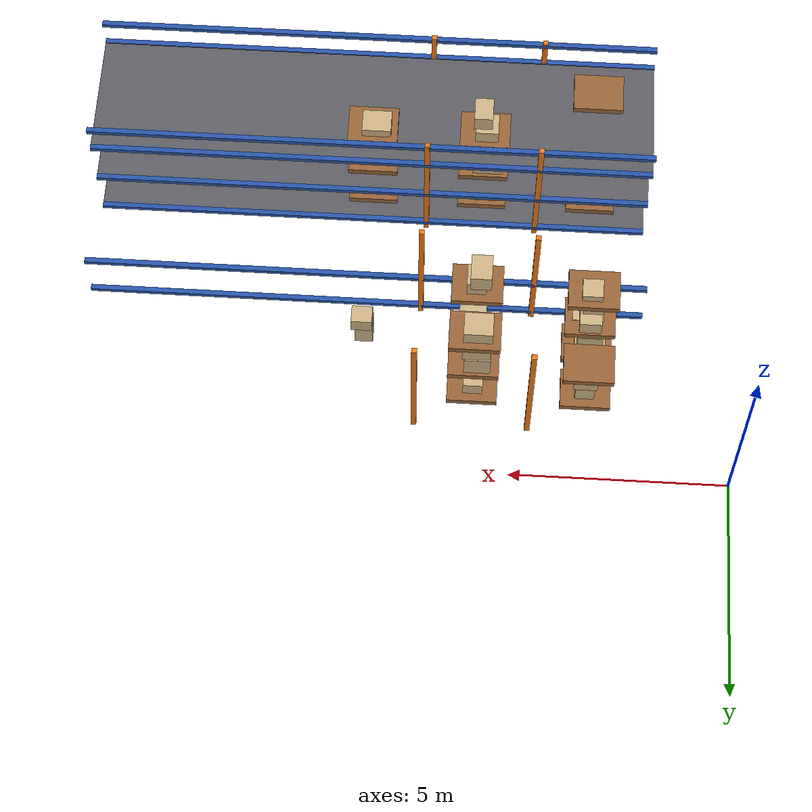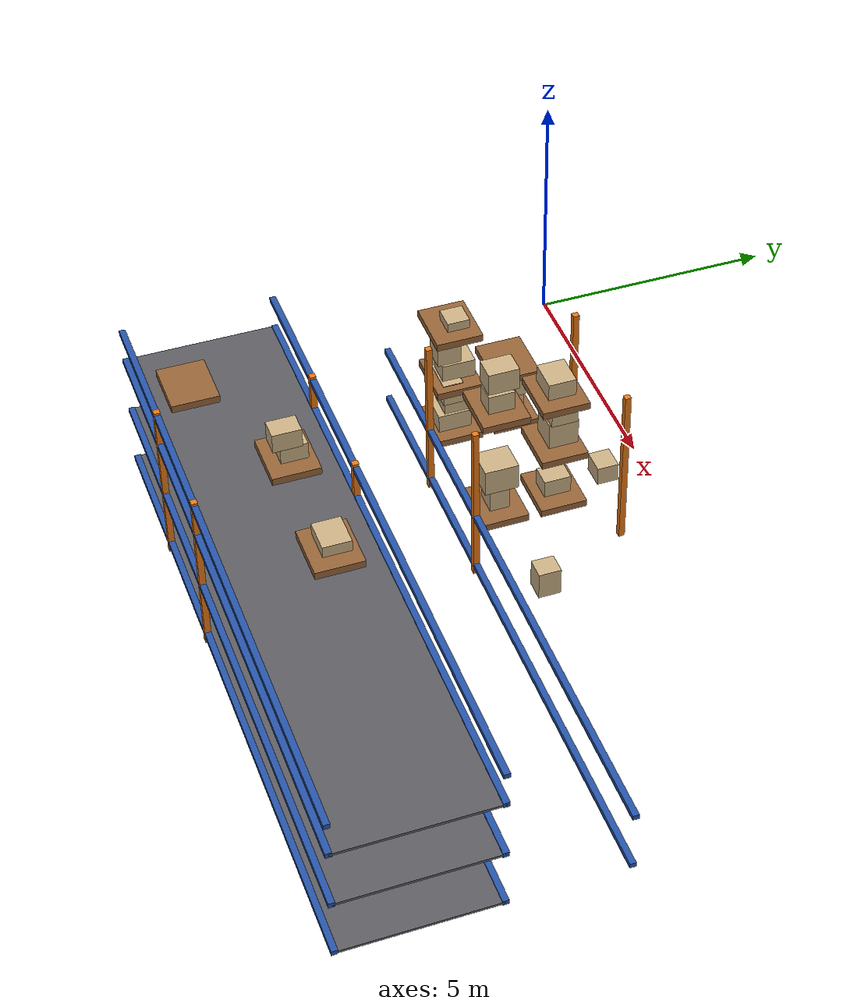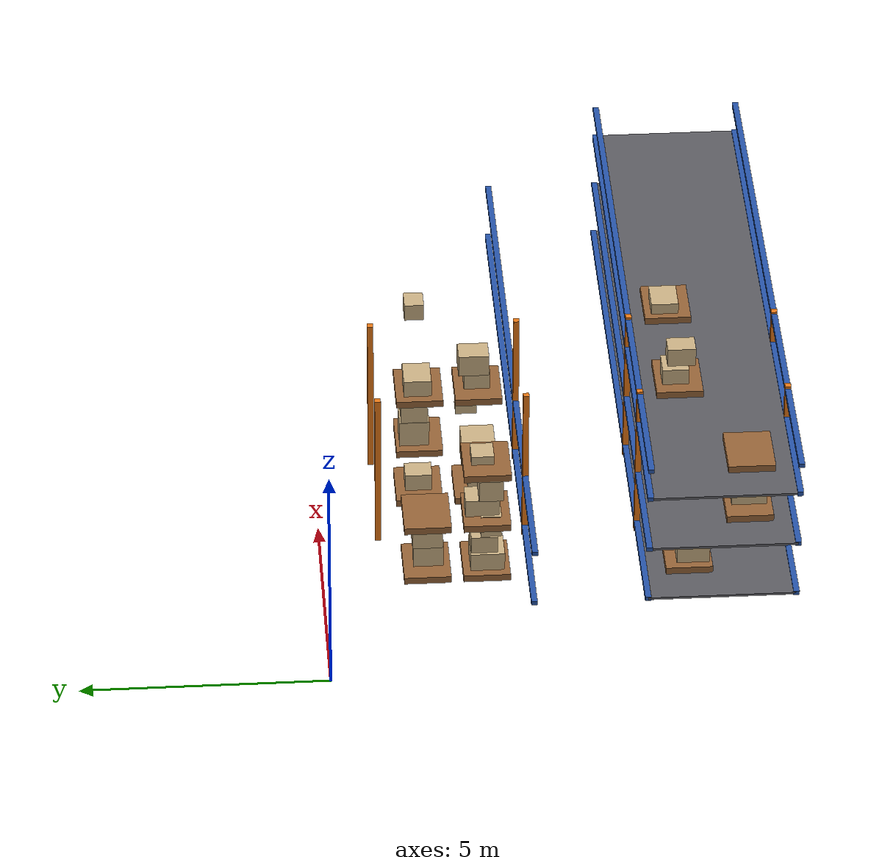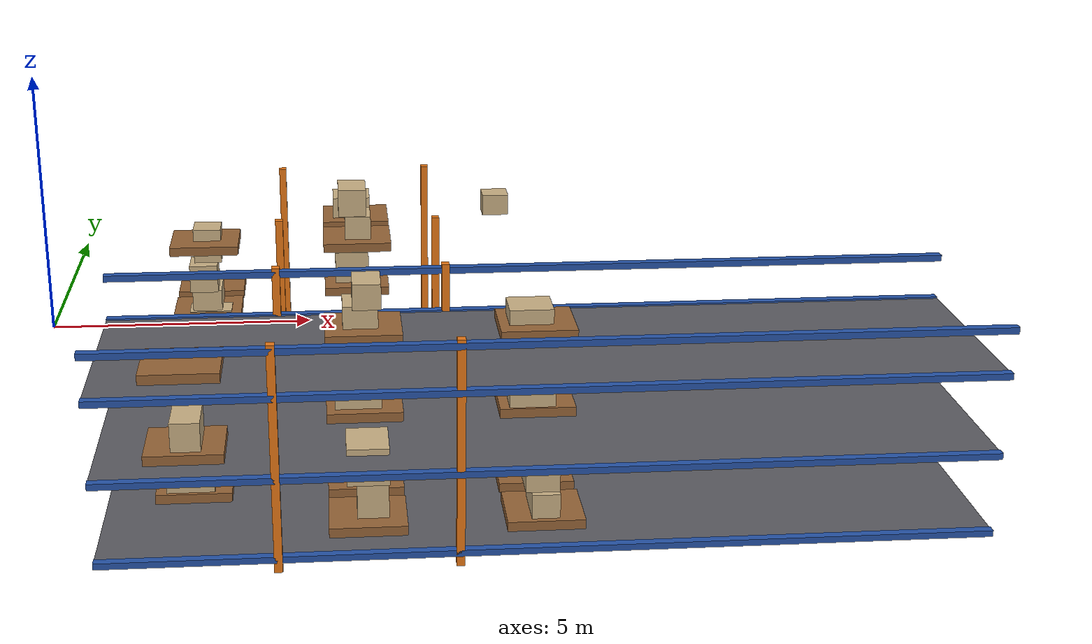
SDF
<sdf version="1.7">
 <world name="default">
  <model name="warehouse_racks">
   <static>1</static>
   <link name="r01_u1_0">
    <pose>4.6 -9.5 1.75 0 0 0</pose>
    <collision name="c"><geometry><box><size>0.12 0.12 3.5</size></box></geometry></collision>
    <visual name="v">
     <geometry><box><size>0.12 0.12 3.5</size></box></geometry>
     <material>
      <ambient>0.910 0.471 0.086 1</ambient>
      <diffuse>0.910 0.471 0.086 1</diffuse>
      <specular>0.1 0.1 0.1 1</specular>
     </material>
    </visual>
   </link>
   <link name="r01_u1_1">
    <pose>4.6 -6.5 1.75 0 0 0</pose>
    <collision name="c"><geometry><box><size>0.12 0.12 3.5</size></box></geometry></collision>
    <visual name="v">
     <geometry><box><size>0.12 0.12 3.5</size></box></geometry>
     <material>
      <ambient>0.910 0.471 0.086 1</ambient>
      <diffuse>0.910 0.471 0.086 1</diffuse>
      <specular>0.1 0.1 0.1 1</specular>
     </material>
    </visual>
   </link>
   <link name="r01_u2_0">
    <pose>7.2 -9.5 1.75 0 0 0</pose>
    <collision name="c"><geometry><box><size>0.12 0.12 3.5</size></box></geometry></collision>
    <visual name="v">
     <geometry><box><size>0.12 0.12 3.5</size></box></geometry>
     <material>
      <ambient>0.910 0.471 0.086 1</ambient>
      <diffuse>0.910 0.471 0.086 1</diffuse>
      <specular>0.1 0.1 0.1 1</specular>
     </material>
    </visual>
   </link>
   <link name="r01_u2_1">
    <pose>7.2 -6.5 1.75 0 0 0</pose>
    <collision name="c"><geometry><box><size>0.12 0.12 3.5</size></box></geometry></collision>
    <visual name="v">
     <geometry><box><size>0.12 0.12 3.5</size></box></geometry>
     <material>
      <ambient>0.910 0.471 0.086 1</ambient>
      <diffuse>0.910 0.471 0.086 1</diffuse>
      <specular>0.1 0.1 0.1 1</specular>
     </material>
    </visual>
   </link>
   <link name="r01_b0_0">
    <pose>8.5 -9.5 0.2 0 0 0</pose>
    <collision name="c"><geometry><box><size>13 0.12 0.1</size></box></geometry></collision>
    <visual name="v">
     <geometry><box><size>13 0.12 0.1</size></box></geometry>
     <material>
      <ambient>0.149 0.329 0.659 1</ambient>
      <diffuse>0.149 0.329 0.659 1</diffuse>
      <specular>0.1 0.1 0.1 1</specular>
     </material>
    </visual>
   </link>
   <link name="r01_b0_1">
    <pose>8.5 -6.5 0.2 0 0 0</pose>
    <collision name="c"><geometry><box><size>13 0.12 0.1</size></box></geometry></collision>
    <visual name="v">
     <geometry><box><size>13 0.12 0.1</size></box></geometry>
     <material>
      <ambient>0.149 0.329 0.659 1</ambient>
      <diffuse>0.149 0.329 0.659 1</diffuse>
      <specular>0.1 0.1 0.1 1</specular>
     </material>
    </visual>
   </link>
   <link name="r01_b1_0">
    <pose>8.5 -9.5 1.45 0 0 0</pose>
    <collision name="c"><geometry><box><size>13 0.12 0.1</size></box></geometry></collision>
    <visual name="v">
     <geometry><box><size>13 0.12 0.1</size></box></geometry>
     <material>
      <ambient>0.149 0.329 0.659 1</ambient>
      <diffuse>0.149 0.329 0.659 1</diffuse>
      <specular>0.1 0.1 0.1 1</specular>
     </material>
    </visual>
   </link>
   <link name="r01_b1_1">
    <pose>8.5 -6.5 1.45 0 0 0</pose>
    <collision name="c"><geometry><box><size>13 0.12 0.1</size></box></geometry></collision>
    <visual name="v">
     <geometry><box><size>13 0.12 0.1</size></box></geometry>
     <material>
      <ambient>0.149 0.329 0.659 1</ambient>
      <diffuse>0.149 0.329 0.659 1</diffuse>
      <specular>0.1 0.1 0.1 1</specular>
     </material>
    </visual>
   </link>
   <link name="r01_b2_0">
    <pose>8.5 -9.5 2.7 0 0 0</pose>
    <collision name="c"><geometry><box><size>13 0.12 0.1</size></box></geometry></collision>
    <visual name="v">
     <geometry><box><size>13 0.12 0.1</size></box></geometry>
     <material>
      <ambient>0.149 0.329 0.659 1</ambient>
      <diffuse>0.149 0.329 0.659 1</diffuse>
      <specular>0.1 0.1 0.1 1</specular>
     </material>
    </visual>
   </link>
   <link name="r01_b2_1">
    <pose>8.5 -6.5 2.7 0 0 0</pose>
    <collision name="c"><geometry><box><size>13 0.12 0.1</size></box></geometry></collision>
    <visual name="v">
     <geometry><box><size>13 0.12 0.1</size></box></geometry>
     <material>
      <ambient>0.149 0.329 0.659 1</ambient>
      <diffuse>0.149 0.329 0.659 1</diffuse>
      <specular>0.1 0.1 0.1 1</specular>
     </material>
    </visual>
   </link>
   <link name="r01_b3_0">
    <pose>8.5 -9.5 3.4 0 0 0</pose>
    <collision name="c"><geometry><box><size>13 0.12 0.1</size></box></geometry></collision>
    <visual name="v">
     <geometry><box><size>13 0.12 0.1</size></box></geometry>
     <material>
      <ambient>0.149 0.329 0.659 1</ambient>
      <diffuse>0.149 0.329 0.659 1</diffuse>
      <specular>0.1 0.1 0.1 1</specular>
     </material>
    </visual>
   </link>
   <link name="r01_b3_1">
    <pose>8.5 -6.5 3.4 0 0 0</pose>
    <collision name="c"><geometry><box><size>13 0.12 0.1</size></box></geometry></collision>
    <visual name="v">
     <geometry><box><size>13 0.12 0.1</size></box></geometry>
     <material>
      <ambient>0.149 0.329 0.659 1</ambient>
      <diffuse>0.149 0.329 0.659 1</diffuse>
      <specular>0.1 0.1 0.1 1</specular>
     </material>
    </visual>
   </link>
   <link name="r01_d0">
    <pose>8.5 -8 0.2 0 0 0</pose>
    <collision name="c"><geometry><box><size>13 3 0.05</size></box></geometry></collision>
    <visual name="v">
     <geometry><box><size>13 3 0.05</size></box></geometry>
     <material>
      <ambient>0.361 0.361 0.384 1</ambient>
      <diffuse>0.361 0.361 0.384 1</diffuse>
      <specular>0.1 0.1 0.1 1</specular>
     </material>
    </visual>
   </link>
   <link name="r01_d1">
    <pose>8.5 -8 1.45 0 0 0</pose>
    <collision name="c"><geometry><box><size>13 3 0.05</size></box></geometry></collision>
    <visual name="v">
     <geometry><box><size>13 3 0.05</size></box></geometry>
     <material>
      <ambient>0.361 0.361 0.384 1</ambient>
      <diffuse>0.361 0.361 0.384 1</diffuse>
      <specular>0.1 0.1 0.1 1</specular>
     </material>
    </visual>
   </link>
   <link name="r01_d2">
    <pose>8.5 -8 2.7 0 0 0</pose>
    <collision name="c"><geometry><box><size>13 3 0.05</size></box></geometry></collision>
    <visual name="v">
     <geometry><box><size>13 3 0.05</size></box></geometry>
     <material>
      <ambient>0.361 0.361 0.384 1</ambient>
      <diffuse>0.361 0.361 0.384 1</diffuse>
      <specular>0.1 0.1 0.1 1</specular>
     </material>
    </visual>
   </link>
   <link name="r11_u1_0">
    <pose>4.6 -4.2 1.75 0 0 0</pose>
    <collision name="c"><geometry><box><size>0.12 0.12 3.5</size></box></geometry></collision>
    <visual name="v">
     <geometry><box><size>0.12 0.12 3.5</size></box></geometry>
     <material>
      <ambient>0.910 0.471 0.086 1</ambient>
      <diffuse>0.910 0.471 0.086 1</diffuse>
      <specular>0.1 0.1 0.1 1</specular>
     </material>
    </visual>
   </link>
   <link name="r11_u1_1">
    <pose>4.6 -1.2 1.75 0 0 0</pose>
    <collision name="c"><geometry><box><size>0.12 0.12 3.5</size></box></geometry></collision>
    <visual name="v">
     <geometry><box><size>0.12 0.12 3.5</size></box></geometry>
     <material>
      <ambient>0.910 0.471 0.086 1</ambient>
      <diffuse>0.910 0.471 0.086 1</diffuse>
      <specular>0.1 0.1 0.1 1</specular>
     </material>
    </visual>
   </link>
   <link name="r11_u2_0">
    <pose>7.2 -4.2 1.75 0 0 0</pose>
    <collision name="c"><geometry><box><size>0.12 0.12 3.5</size></box></geometry></collision>
    <visual name="v">
     <geometry><box><size>0.12 0.12 3.5</size></box></geometry>
     <material>
      <ambient>0.910 0.471 0.086 1</ambient>
      <diffuse>0.910 0.471 0.086 1</diffuse>
      <specular>0.1 0.1 0.1 1</specular>
     </material>
    </visual>
   </link>
   <link name="r11_u2_1">
    <pose>7.2 -1.2 1.75 0 0 0</pose>
    <collision name="c"><geometry><box><size>0.12 0.12 3.5</size></box></geometry></collision>
    <visual name="v">
     <geometry><box><size>0.12 0.12 3.5</size></box></geometry>
     <material>
      <ambient>0.910 0.471 0.086 1</ambient>
      <diffuse>0.910 0.471 0.086 1</diffuse>
      <specular>0.1 0.1 0.1 1</specular>
     </material>
    </visual>
   </link>
   <link name="r11_b0_0">
    <pose>8.5 -4.2 0.2 0 0 0</pose>
    <collision name="c"><geometry><box><size>13 0.12 0.1</size></box></geometry></collision>
    <visual name="v">
     <geometry><box><size>13 0.12 0.1</size></box></geometry>
     <material>
      <ambient>0.149 0.329 0.659 1</ambient>
      <diffuse>0.149 0.329 0.659 1</diffuse>
      <specular>0.1 0.1 0.1 1</specular>
     </material>
    </visual>
   </link>
   <link name="r11_b1_0">
    <pose>8.5 -4.2 1.45 0 0 0</pose>
    <collision name="c"><geometry><box><size>13 0.12 0.1</size></box></geometry></collision>
    <visual name="v">
     <geometry><box><size>13 0.12 0.1</size></box></geometry>
     <material>
      <ambient>0.149 0.329 0.659 1</ambient>
      <diffuse>0.149 0.329 0.659 1</diffuse>
      <specular>0.1 0.1 0.1 1</specular>
     </material>
    </visual>
   </link>
  </model>
  <model name="warehouse_loads">
   <static>1</static>
   <link name="r01L0_0_1_p">
    <pose>3.3 -7.4 0.325 0 0 0</pose>
    <collision name="c"><geometry><box><size>1.15 0.95 0.15</size></box></geometry></collision>
    <visual name="v">
     <geometry><box><size>1.15 0.95 0.15</size></box></geometry>
     <material>
      <ambient>0.588 0.392 0.216 1</ambient>
      <diffuse>0.588 0.392 0.216 1</diffuse>
      <specular>0.1 0.1 0.1 1</specular>
     </material>
    </visual>
   </link>
   <link name="r01L0_0_1_c0">
    <pose>3.25613 -7.48968 0.681782 0 0 0</pose>
    <collision name="c"><geometry><box><size>0.723895 0.66448 0.563564</size></box></geometry></collision>
    <visual name="v">
     <geometry><box><size>0.723895 0.66448 0.563564</size></box></geometry>
     <material>
      <ambient>0.792 0.690 0.518 1</ambient>
      <diffuse>0.792 0.690 0.518 1</diffuse>
      <specular>0.1 0.1 0.1 1</specular>
     </material>
    </visual>
   </link>
   <link name="r01L0_0_1_c1">
    <pose>3.39421 -7.41275 1.15718 0 0 0</pose>
    <collision name="c"><geometry><box><size>0.631692 0.622237 0.387229</size></box></geometry></collision>
    <visual name="v">
     <geometry><box><size>0.631692 0.622237 0.387229</size></box></geometry>
     <material>
      <ambient>0.792 0.690 0.518 1</ambient>
      <diffuse>0.792 0.690 0.518 1</diffuse>
      <specular>0.1 0.1 0.1 1</specular>
     </material>
    </visual>
   </link>
   <link name="r01L0_1_0_p">
    <pose>5.9 -8.6 0.325 0 0 0</pose>
    <collision name="c"><geometry><box><size>1.15 0.95 0.15</size></box></geometry></collision>
    <visual name="v">
     <geometry><box><size>1.15 0.95 0.15</size></box></geometry>
     <material>
      <ambient>0.588 0.392 0.216 1</ambient>
      <diffuse>0.588 0.392 0.216 1</diffuse>
      <specular>0.1 0.1 0.1 1</specular>
     </material>
    </visual>
   </link>
   <link name="r01L0_1_0_c0">
    <pose>5.97685 -8.53761 0.694521 0 0 0</pose>
    <collision name="c"><geometry><box><size>0.466447 0.530672 0.589041</size></box></geometry></collision>
    <visual name="v">
     <geometry><box><size>0.466447 0.530672 0.589041</size></box></geometry>
     <material>
      <ambient>0.792 0.690 0.518 1</ambient>
      <diffuse>0.792 0.690 0.518 1</diffuse>
      <specular>0.1 0.1 0.1 1</specular>
     </material>
    </visual>
   </link>
   <link name="r01L0_1_0_c1">
    <pose>5.90985 -8.55609 1.28163 0 0 0</pose>
    <collision name="c"><geometry><box><size>0.620814 0.719698 0.585175</size></box></geometry></collision>
    <visual name="v">
     <geometry><box><size>0.620814 0.719698 0.585175</size></box></geometry>
     <material>
      <ambient>0.792 0.690 0.518 1</ambient>
      <diffuse>0.792 0.690 0.518 1</diffuse>
      <specular>0.1 0.1 0.1 1</specular>
     </material>
    </visual>
   </link>
   <link name="r01L0_1_1_p">
    <pose>5.9 -7.4 0.325 0 0 0</pose>
    <collision name="c"><geometry><box><size>1.15 0.95 0.15</size></box></geometry></collision>
    <visual name="v">
     <geometry><box><size>1.15 0.95 0.15</size></box></geometry>
     <material>
      <ambient>0.588 0.392 0.216 1</ambient>
      <diffuse>0.588 0.392 0.216 1</diffuse>
      <specular>0.1 0.1 0.1 1</specular>
     </material>
    </visual>
   </link>
   <link name="r01L0_1_1_c0">
    <pose>5.82771 -7.3261 0.651864 0 0 0</pose>
    <collision name="c"><geometry><box><size>0.726713 0.54381 0.503729</size></box></geometry></collision>
    <visual name="v">
     <geometry><box><size>0.726713 0.54381 0.503729</size></box></geometry>
     <material>
      <ambient>0.792 0.690 0.518 1</ambient>
      <diffuse>0.792 0.690 0.518 1</diffuse>
      <specular>0.1 0.1 0.1 1</specular>
     </material>
    </visual>
   </link>
   <link name="r01L0_2_0_p">
    <pose>8.5 -8.6 0.325 0 0 0</pose>
    <collision name="c"><geometry><box><size>1.15 0.95 0.15</size></box></geometry></collision>
    <visual name="v">
     <geometry><box><size>1.15 0.95 0.15</size></box></geometry>
     <material>
      <ambient>0.588 0.392 0.216 1</ambient>
      <diffuse>0.588 0.392 0.216 1</diffuse>
      <specular>0.1 0.1 0.1 1</specular>
     </material>
    </visual>
   </link>
   <link name="r01L0_2_0_c0">
    <pose>8.49444 -8.63127 0.590914 0 0 0</pose>
    <collision name="c"><geometry><box><size>0.417142 0.724372 0.381828</size></box></geometry></collision>
    <visual name="v">
     <geometry><box><size>0.417142 0.724372 0.381828</size></box></geometry>
     <material>
      <ambient>0.792 0.690 0.518 1</ambient>
      <diffuse>0.792 0.690 0.518 1</diffuse>
      <specular>0.1 0.1 0.1 1</specular>
     </material>
    </visual>
   </link>
   <link name="r01L0_2_0_c1">
    <pose>8.45203 -8.5688 1.07886 0 0 0</pose>
    <collision name="c"><geometry><box><size>0.50422 0.658661 0.594074</size></box></geometry></collision>
    <visual name="v">
     <geometry><box><size>0.50422 0.658661 0.594074</size></box></geometry>
     <material>
      <ambient>0.792 0.690 0.518 1</ambient>
      <diffuse>0.792 0.690 0.518 1</diffuse>
      <specular>0.1 0.1 0.1 1</specular>
     </material>
    </visual>
   </link>
   <link name="r01L0_2_1_p">
    <pose>8.5 -7.4 0.325 0 0 0</pose>
    <collision name="c"><geometry><box><size>1.15 0.95 0.15</size></box></geometry></collision>
    <visual name="v">
     <geometry><box><size>1.15 0.95 0.15</size></box></geometry>
     <material>
      <ambient>0.588 0.392 0.216 1</ambient>
      <diffuse>0.588 0.392 0.216 1</diffuse>
      <specular>0.1 0.1 0.1 1</specular>
     </material>
    </visual>
   </link>
   <link name="r01L0_2_1_c1">
    <pose>8.4906 -7.43343 1.02373 0 0 0</pose>
    <collision name="c"><geometry><box><size>0.575212 0.684139 0.487597</size></box></geometry></collision>
    <visual name="v">
     <geometry><box><size>0.575212 0.684139 0.487597</size></box></geometry>
     <material>
      <ambient>0.792 0.690 0.518 1</ambient>
      <diffuse>0.792 0.690 0.518 1</diffuse>
      <specular>0.1 0.1 0.1 1</specular>
     </material>
    </visual>
   </link>
   <link name="r01L1_0_0_p">
    <pose>3.3 -8.6 1.575 0 0 0</pose>
    <collision name="c"><geometry><box><size>1.15 0.95 0.15</size></box></geometry></collision>
    <visual name="v">
     <geometry><box><size>1.15 0.95 0.15</size></box></geometry>
     <material>
      <ambient>0.588 0.392 0.216 1</ambient>
      <diffuse>0.588 0.392 0.216 1</diffuse>
      <specular>0.1 0.1 0.1 1</specular>
     </material>
    </visual>
   </link>
   <link name="r01L1_0_0_c0">
    <pose>3.32916 -8.61363 1.87307 0 0 0</pose>
    <collision name="c"><geometry><box><size>0.432409 0.713877 0.44614</size></box></geometry></collision>
    <visual name="v">
     <geometry><box><size>0.432409 0.713877 0.44614</size></box></geometry>
     <material>
      <ambient>0.792 0.690 0.518 1</ambient>
      <diffuse>0.792 0.690 0.518 1</diffuse>
      <specular>0.1 0.1 0.1 1</specular>
     </material>
    </visual>
   </link>
   <link name="r01L1_1_1_p">
    <pose>5.9 -7.4 1.575 0 0 0</pose>
    <collision name="c"><geometry><box><size>1.15 0.95 0.15</size></box></geometry></collision>
    <visual name="v">
     <geometry><box><size>1.15 0.95 0.15</size></box></geometry>
     <material>
      <ambient>0.588 0.392 0.216 1</ambient>
      <diffuse>0.588 0.392 0.216 1</diffuse>
      <specular>0.1 0.1 0.1 1</specular>
     </material>
    </visual>
   </link>
   <link name="r01L1_1_1_c0">
    <pose>5.80645 -7.3581 1.82773 0 0 0</pose>
    <collision name="c"><geometry><box><size>0.697039 0.705512 0.355453</size></box></geometry></collision>
    <visual name="v">
     <geometry><box><size>0.697039 0.705512 0.355453</size></box></geometry>
     <material>
      <ambient>0.792 0.690 0.518 1</ambient>
      <diffuse>0.792 0.690 0.518 1</diffuse>
      <specular>0.1 0.1 0.1 1</specular>
     </material>
    </visual>
   </link>
   <link name="r01L1_1_1_c1">
    <pose>5.80004 -7.4217 2.25385 0 0 0</pose>
    <collision name="c"><geometry><box><size>0.713494 0.565644 0.496794</size></box></geometry></collision>
    <visual name="v">
     <geometry><box><size>0.713494 0.565644 0.496794</size></box></geometry>
     <material>
      <ambient>0.792 0.690 0.518 1</ambient>
      <diffuse>0.792 0.690 0.518 1</diffuse>
      <specular>0.1 0.1 0.1 1</specular>
     </material>
    </visual>
   </link>
   <link name="r01L1_2_1_p">
    <pose>8.5 -7.4 1.575 0 0 0</pose>
    <collision name="c"><geometry><box><size>1.15 0.95 0.15</size></box></geometry></collision>
    <visual name="v">
     <geometry><box><size>1.15 0.95 0.15</size></box></geometry>
     <material>
      <ambient>0.588 0.392 0.216 1</ambient>
      <diffuse>0.588 0.392 0.216 1</diffuse>
      <specular>0.1 0.1 0.1 1</specular>
     </material>
    </visual>
   </link>
   <link name="r01L1_2_1_c0">
    <pose>8.42181 -7.46912 1.85606 0 0 0</pose>
    <collision name="c"><geometry><box><size>0.699412 0.740284 0.412116</size></box></geometry></collision>
    <visual name="v">
     <geometry><box><size>0.699412 0.740284 0.412116</size></box></geometry>
     <material>
      <ambient>0.792 0.690 0.518 1</ambient>
      <diffuse>0.792 0.690 0.518 1</diffuse>
      <specular>0.1 0.1 0.1 1</specular>
     </material>
    </visual>
   </link>
   <link name="r01L1_2_1_c2">
    <pose>8.40791 -7.34354 2.89143 0 0 0</pose>
    <collision name="c"><geometry><box><size>0.66768 0.560064 0.487875</size></box></geometry></collision>
    <visual name="v">
     <geometry><box><size>0.66768 0.560064 0.487875</size></box></geometry>
     <material>
      <ambient>0.792 0.690 0.518 1</ambient>
      <diffuse>0.792 0.690 0.518 1</diffuse>
      <specular>0.1 0.1 0.1 1</specular>
     </material>
    </visual>
   </link>
   <link name="r01L2_0_0_p">
    <pose>3.3 -8.6 2.825 0 0 0</pose>
    <collision name="c"><geometry><box><size>1.15 0.95 0.15</size></box></geometry></collision>
    <visual name="v">
     <geometry><box><size>1.15 0.95 0.15</size></box></geometry>
     <material>
      <ambient>0.588 0.392 0.216 1</ambient>
      <diffuse>0.588 0.392 0.216 1</diffuse>
      <specular>0.1 0.1 0.1 1</specular>
     </material>
    </visual>
   </link>
   <link name="r01L2_1_1_p">
    <pose>5.9 -7.4 2.825 0 0 0</pose>
    <collision name="c"><geometry><box><size>1.15 0.95 0.15</size></box></geometry></collision>
    <visual name="v">
     <geometry><box><size>1.15 0.95 0.15</size></box></geometry>
     <material>
      <ambient>0.588 0.392 0.216 1</ambient>
      <diffuse>0.588 0.392 0.216 1</diffuse>
      <specular>0.1 0.1 0.1 1</specular>
     </material>
    </visual>
   </link>
   <link name="r01L2_1_1_c0">
    <pose>5.85842 -7.33097 3.07584 0 0 0</pose>
    <collision name="c"><geometry><box><size>0.526812 0.538725 0.351688</size></box></geometry></collision>
    <visual name="v">
     <geometry><box><size>0.526812 0.538725 0.351688</size></box></geometry>
     <material>
      <ambient>0.792 0.690 0.518 1</ambient>
      <diffuse>0.792 0.690 0.518 1</diffuse>
      <specular>0.1 0.1 0.1 1</specular>
     </material>
    </visual>
   </link>
   <link name="r01L2_1_1_c1">
    <pose>5.95317 -7.46121 3.45174 0 0 0</pose>
    <collision name="c"><geometry><box><size>0.423601 0.573493 0.400103</size></box></geometry></collision>
    <visual name="v">
     <geometry><box><size>0.423601 0.573493 0.400103</size></box></geometry>
     <material>
      <ambient>0.792 0.690 0.518 1</ambient>
      <diffuse>0.792 0.690 0.518 1</diffuse>
      <specular>0.1 0.1 0.1 1</specular>
     </material>
    </visual>
   </link>
   <link name="r01L2_2_1_p">
    <pose>8.5 -7.4 2.825 0 0 0</pose>
    <collision name="c"><geometry><box><size>1.15 0.95 0.15</size></box></geometry></collision>
    <visual name="v">
     <geometry><box><size>1.15 0.95 0.15</size></box></geometry>
     <material>
      <ambient>0.588 0.392 0.216 1</ambient>
      <diffuse>0.588 0.392 0.216 1</diffuse>
      <specular>0.1 0.1 0.1 1</specular>
     </material>
    </visual>
   </link>
   <link name="r11L0_0_0_p">
    <pose>3.3 -3.3 0.325 0 0 0</pose>
    <collision name="c"><geometry><box><size>1.15 0.95 0.15</size></box></geometry></collision>
    <visual name="v">
     <geometry><box><size>1.15 0.95 0.15</size></box></geometry>
     <material>
      <ambient>0.588 0.392 0.216 1</ambient>
      <diffuse>0.588 0.392 0.216 1</diffuse>
      <specular>0.1 0.1 0.1 1</specular>
     </material>
    </visual>
   </link>
   <link name="r11L0_0_0_c0">
    <pose>3.24363 -3.32005 0.597871 0 0 0</pose>
    <collision name="c"><geometry><box><size>0.696223 0.690216 0.395741</size></box></geometry></collision>
    <visual name="v">
     <geometry><box><size>0.696223 0.690216 0.395741</size></box></geometry>
     <material>
      <ambient>0.792 0.690 0.518 1</ambient>
      <diffuse>0.792 0.690 0.518 1</diffuse>
      <specular>0.1 0.1 0.1 1</specular>
     </material>
    </visual>
   </link>
   <link name="r11L0_0_0_c1">
    <pose>3.24941 -3.25502 0.986123 0 0 0</pose>
    <collision name="c"><geometry><box><size>0.581262 0.534252 0.380764</size></box></geometry></collision>
    <visual name="v">
     <geometry><box><size>0.581262 0.534252 0.380764</size></box></geometry>
     <material>
      <ambient>0.792 0.690 0.518 1</ambient>
      <diffuse>0.792 0.690 0.518 1</diffuse>
      <specular>0.1 0.1 0.1 1</specular>
     </material>
    </visual>
   </link>
   <link name="r11L0_0_0_c2">
    <pose>3.35149 -3.39237 1.4218 0 0 0</pose>
    <collision name="c"><geometry><box><size>0.714053 0.414385 0.490586</size></box></geometry></collision>
    <visual name="v">
     <geometry><box><size>0.714053 0.414385 0.490586</size></box></geometry>
     <material>
      <ambient>0.792 0.690 0.518 1</ambient>
      <diffuse>0.792 0.690 0.518 1</diffuse>
      <specular>0.1 0.1 0.1 1</specular>
     </material>
    </visual>
   </link>
   <link name="r11L0_0_1_p">
    <pose>3.3 -2.1 0.325 0 0 0</pose>
    <collision name="c"><geometry><box><size>1.15 0.95 0.15</size></box></geometry></collision>
    <visual name="v">
     <geometry><box><size>1.15 0.95 0.15</size></box></geometry>
     <material>
      <ambient>0.588 0.392 0.216 1</ambient>
      <diffuse>0.588 0.392 0.216 1</diffuse>
      <specular>0.1 0.1 0.1 1</specular>
     </material>
    </visual>
   </link>
   <link name="r11L0_0_1_c0">
    <pose>3.32541 -2.13876 0.643756 0 0 0</pose>
    <collision name="c"><geometry><box><size>0.441206 0.609832 0.487513</size></box></geometry></collision>
    <visual name="v">
     <geometry><box><size>0.441206 0.609832 0.487513</size></box></geometry>
     <material>
      <ambient>0.792 0.690 0.518 1</ambient>
      <diffuse>0.792 0.690 0.518 1</diffuse>
      <specular>0.1 0.1 0.1 1</specular>
     </material>
    </visual>
   </link>
   <link name="r11L0_0_1_c1">
    <pose>3.33177 -2.11064 1.11573 0 0 0</pose>
    <collision name="c"><geometry><box><size>0.547025 0.603919 0.456435</size></box></geometry></collision>
    <visual name="v">
     <geometry><box><size>0.547025 0.603919 0.456435</size></box></geometry>
     <material>
      <ambient>0.792 0.690 0.518 1</ambient>
      <diffuse>0.792 0.690 0.518 1</diffuse>
      <specular>0.1 0.1 0.1 1</specular>
     </material>
    </visual>
   </link>
   <link name="r11L0_1_0_p">
    <pose>5.9 -3.3 0.325 0 0 0</pose>
    <collision name="c"><geometry><box><size>1.15 0.95 0.15</size></box></geometry></collision>
    <visual name="v">
     <geometry><box><size>1.15 0.95 0.15</size></box></geometry>
     <material>
      <ambient>0.588 0.392 0.216 1</ambient>
      <diffuse>0.588 0.392 0.216 1</diffuse>
      <specular>0.1 0.1 0.1 1</specular>
     </material>
    </visual>
   </link>
   <link name="r11L0_1_0_c0">
    <pose>5.89305 -3.31064 0.698267 0 0 0</pose>
    <collision name="c"><geometry><box><size>0.462567 0.401228 0.596534</size></box></geometry></collision>
    <visual name="v">
     <geometry><box><size>0.462567 0.401228 0.596534</size></box></geometry>
     <material>
      <ambient>0.792 0.690 0.518 1</ambient>
      <diffuse>0.792 0.690 0.518 1</diffuse>
      <specular>0.1 0.1 0.1 1</specular>
     </material>
    </visual>
   </link>
   <link name="r11L0_1_0_c1">
    <pose>5.96211 -3.31993 1.2761 0 0 0</pose>
    <collision name="c"><geometry><box><size>0.616501 0.68664 0.559136</size></box></geometry></collision>
    <visual name="v">
     <geometry><box><size>0.616501 0.68664 0.559136</size></box></geometry>
     <material>
      <ambient>0.792 0.690 0.518 1</ambient>
      <diffuse>0.792 0.690 0.518 1</diffuse>
      <specular>0.1 0.1 0.1 1</specular>
     </material>
    </visual>
   </link>
   <link name="r11L0_1_1_p">
    <pose>5.9 -2.1 0.325 0 0 0</pose>
    <collision name="c"><geometry><box><size>1.15 0.95 0.15</size></box></geometry></collision>
    <visual name="v">
     <geometry><box><size>1.15 0.95 0.15</size></box></geometry>
     <material>
      <ambient>0.588 0.392 0.216 1</ambient>
      <diffuse>0.588 0.392 0.216 1</diffuse>
      <specular>0.1 0.1 0.1 1</specular>
     </material>
    </visual>
   </link>
   <link name="r11L0_1_1_c0">
    <pose>5.88839 -2.09797 0.586464 0 0 0</pose>
    <collision name="c"><geometry><box><size>0.44496 0.55071 0.372928</size></box></geometry></collision>
    <visual name="v">
     <geometry><box><size>0.44496 0.55071 0.372928</size></box></geometry>
     <material>
      <ambient>0.792 0.690 0.518 1</ambient>
      <diffuse>0.792 0.690 0.518 1</diffuse>
      <specular>0.1 0.1 0.1 1</specular>
     </material>
    </visual>
   </link>
   <link name="r11L0_2_0_c0">
    <pose>8.46275 -3.25592 0.690266 0 0 0</pose>
    <collision name="c"><geometry><box><size>0.414228 0.445595 0.580531</size></box></geometry></collision>
    <visual name="v">
     <geometry><box><size>0.414228 0.445595 0.580531</size></box></geometry>
     <material>
      <ambient>0.792 0.690 0.518 1</ambient>
      <diffuse>0.792 0.690 0.518 1</diffuse>
      <specular>0.1 0.1 0.1 1</specular>
     </material>
    </visual>
   </link>
   <link name="r11L1_0_0_p">
    <pose>3.3 -3.3 1.575 0 0 0</pose>
    <collision name="c"><geometry><box><size>1.15 0.95 0.15</size></box></geometry></collision>
    <visual name="v">
     <geometry><box><size>1.15 0.95 0.15</size></box></geometry>
     <material>
      <ambient>0.588 0.392 0.216 1</ambient>
      <diffuse>0.588 0.392 0.216 1</diffuse>
      <specular>0.1 0.1 0.1 1</specular>
     </material>
    </visual>
   </link>
   <link name="r11L1_0_0_c0">
    <pose>3.30044 -3.21602 1.84295 0 0 0</pose>
    <collision name="c"><geometry><box><size>0.496247 0.685469 0.385893</size></box></geometry></collision>
    <visual name="v">
     <geometry><box><size>0.496247 0.685469 0.385893</size></box></geometry>
     <material>
      <ambient>0.792 0.690 0.518 1</ambient>
      <diffuse>0.792 0.690 0.518 1</diffuse>
      <specular>0.1 0.1 0.1 1</specular>
     </material>
    </visual>
   </link>
   <link name="r11L1_0_0_c1">
    <pose>3.26382 -3.39263 2.27414 0 0 0</pose>
    <collision name="c"><geometry><box><size>0.472913 0.492004 0.476502</size></box></geometry></collision>
    <visual name="v">
     <geometry><box><size>0.472913 0.492004 0.476502</size></box></geometry>
     <material>
      <ambient>0.792 0.690 0.518 1</ambient>
      <diffuse>0.792 0.690 0.518 1</diffuse>
      <specular>0.1 0.1 0.1 1</specular>
     </material>
    </visual>
   </link>
   <link name="r11L1_0_0_c2">
    <pose>3.33594 -3.22092 2.80445 0 0 0</pose>
    <collision name="c"><geometry><box><size>0.463734 0.45643 0.584101</size></box></geometry></collision>
    <visual name="v">
     <geometry><box><size>0.463734 0.45643 0.584101</size></box></geometry>
     <material>
      <ambient>0.792 0.690 0.518 1</ambient>
      <diffuse>0.792 0.690 0.518 1</diffuse>
      <specular>0.1 0.1 0.1 1</specular>
     </material>
    </visual>
   </link>
   <link name="r11L1_0_1_p">
    <pose>3.3 -2.1 1.575 0 0 0</pose>
    <collision name="c"><geometry><box><size>1.15 0.95 0.15</size></box></geometry></collision>
    <visual name="v">
     <geometry><box><size>1.15 0.95 0.15</size></box></geometry>
     <material>
      <ambient>0.588 0.392 0.216 1</ambient>
      <diffuse>0.588 0.392 0.216 1</diffuse>
      <specular>0.1 0.1 0.1 1</specular>
     </material>
    </visual>
   </link>
   <link name="r11L1_1_1_p">
    <pose>5.9 -2.1 1.575 0 0 0</pose>
    <collision name="c"><geometry><box><size>1.15 0.95 0.15</size></box></geometry></collision>
    <visual name="v">
     <geometry><box><size>1.15 0.95 0.15</size></box></geometry>
     <material>
      <ambient>0.588 0.392 0.216 1</ambient>
      <diffuse>0.588 0.392 0.216 1</diffuse>
      <specular>0.1 0.1 0.1 1</specular>
     </material>
    </visual>
   </link>
   <link name="r11L1_1_1_c0">
    <pose>5.82092 -2.00141 1.93532 0 0 0</pose>
    <collision name="c"><geometry><box><size>0.594313 0.603015 0.570634</size></box></geometry></collision>
    <visual name="v">
     <geometry><box><size>0.594313 0.603015 0.570634</size></box></geometry>
     <material>
      <ambient>0.792 0.690 0.518 1</ambient>
      <diffuse>0.792 0.690 0.518 1</diffuse>
      <specular>0.1 0.1 0.1 1</specular>
     </material>
    </visual>
   </link>
   <link name="r11L1_1_1_c1">
    <pose>5.85295 -2.0019 2.49534 0 0 0</pose>
    <collision name="c"><geometry><box><size>0.620422 0.53799 0.549418</size></box></geometry></collision>
    <visual name="v">
     <geometry><box><size>0.620422 0.53799 0.549418</size></box></geometry>
     <material>
      <ambient>0.792 0.690 0.518 1</ambient>
      <diffuse>0.792 0.690 0.518 1</diffuse>
      <specular>0.1 0.1 0.1 1</specular>
     </material>
    </visual>
   </link>
   <link name="r11L2_0_0_p">
    <pose>3.3 -3.3 2.825 0 0 0</pose>
    <collision name="c"><geometry><box><size>1.15 0.95 0.15</size></box></geometry></collision>
    <visual name="v">
     <geometry><box><size>1.15 0.95 0.15</size></box></geometry>
     <material>
      <ambient>0.588 0.392 0.216 1</ambient>
      <diffuse>0.588 0.392 0.216 1</diffuse>
      <specular>0.1 0.1 0.1 1</specular>
     </material>
    </visual>
   </link>
   <link name="r11L2_1_0_p">
    <pose>5.9 -3.3 2.825 0 0 0</pose>
    <collision name="c"><geometry><box><size>1.15 0.95 0.15</size></box></geometry></collision>
    <visual name="v">
     <geometry><box><size>1.15 0.95 0.15</size></box></geometry>
     <material>
      <ambient>0.588 0.392 0.216 1</ambient>
      <diffuse>0.588 0.392 0.216 1</diffuse>
      <specular>0.1 0.1 0.1 1</specular>
     </material>
    </visual>
   </link>
   <link name="r11L2_1_0_c0">
    <pose>5.91672 -3.28218 3.10303 0 0 0</pose>
    <collision name="c"><geometry><box><size>0.437227 0.525003 0.406065</size></box></geometry></collision>
    <visual name="v">
     <geometry><box><size>0.437227 0.525003 0.406065</size></box></geometry>
     <material>
      <ambient>0.792 0.690 0.518 1</ambient>
      <diffuse>0.792 0.690 0.518 1</diffuse>
      <specular>0.1 0.1 0.1 1</specular>
     </material>
    </visual>
   </link>
   <link name="r11L2_1_0_c1">
    <pose>5.82695 -3.21268 3.54043 0 0 0</pose>
    <collision name="c"><geometry><box><size>0.471465 0.618375 0.468725</size></box></geometry></collision>
    <visual name="v">
     <geometry><box><size>0.471465 0.618375 0.468725</size></box></geometry>
     <material>
      <ambient>0.792 0.690 0.518 1</ambient>
      <diffuse>0.792 0.690 0.518 1</diffuse>
      <specular>0.1 0.1 0.1 1</specular>
     </material>
    </visual>
   </link>
   <link name="r11L2_1_1_p">
    <pose>5.9 -2.1 2.825 0 0 0</pose>
    <collision name="c"><geometry><box><size>1.15 0.95 0.15</size></box></geometry></collision>
    <visual name="v">
     <geometry><box><size>1.15 0.95 0.15</size></box></geometry>
     <material>
      <ambient>0.588 0.392 0.216 1</ambient>
      <diffuse>0.588 0.392 0.216 1</diffuse>
      <specular>0.1 0.1 0.1 1</specular>
     </material>
    </visual>
   </link>
   <link name="r11L2_1_1_c0">
    <pose>5.82894 -2.06691 3.08296 0 0 0</pose>
    <collision name="c"><geometry><box><size>0.647615 0.557799 0.365917</size></box></geometry></collision>
    <visual name="v">
     <geometry><box><size>0.647615 0.557799 0.365917</size></box></geometry>
     <material>
      <ambient>0.792 0.690 0.518 1</ambient>
      <diffuse>0.792 0.690 0.518 1</diffuse>
      <specular>0.1 0.1 0.1 1</specular>
     </material>
    </visual>
   </link>
   <link name="r11L2_2_1_c0">
    <pose>8.40505 -2.16287 3.08269 0 0 0</pose>
    <collision name="c"><geometry><box><size>0.457785 0.40014 0.365382</size></box></geometry></collision>
    <visual name="v">
     <geometry><box><size>0.457785 0.40014 0.365382</size></box></geometry>
     <material>
      <ambient>0.792 0.690 0.518 1</ambient>
      <diffuse>0.792 0.690 0.518 1</diffuse>
      <specular>0.1 0.1 0.1 1</specular>
     </material>
    </visual>
   </link>
  </model>
 </world>
</sdf>
